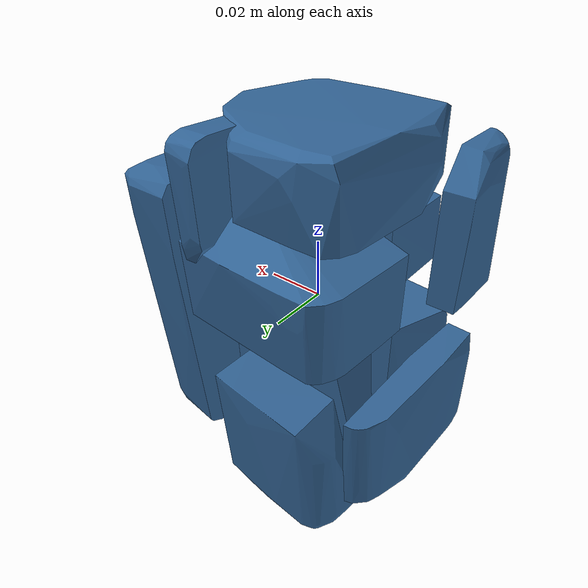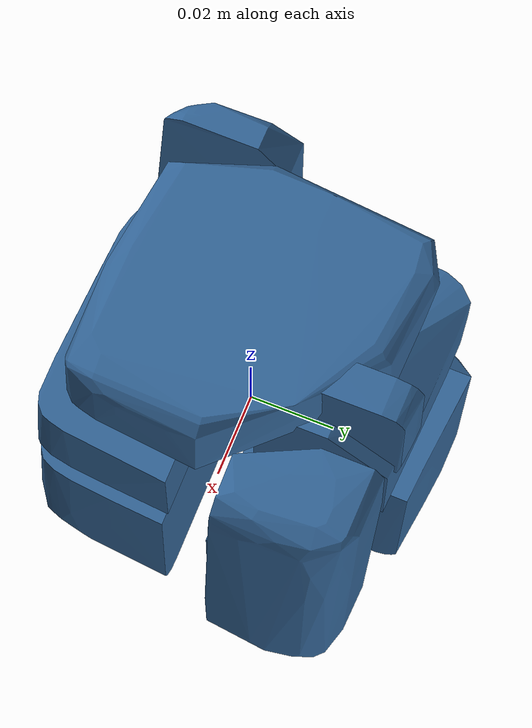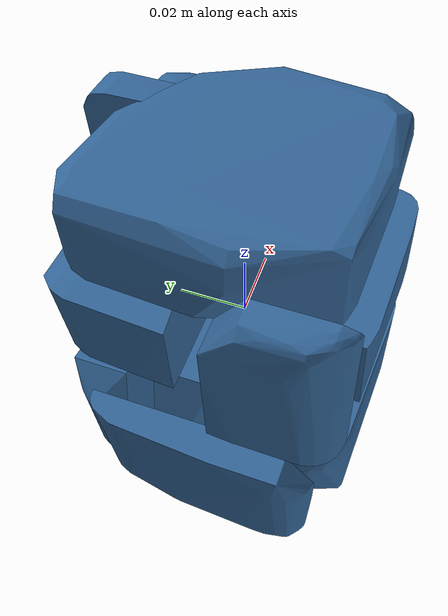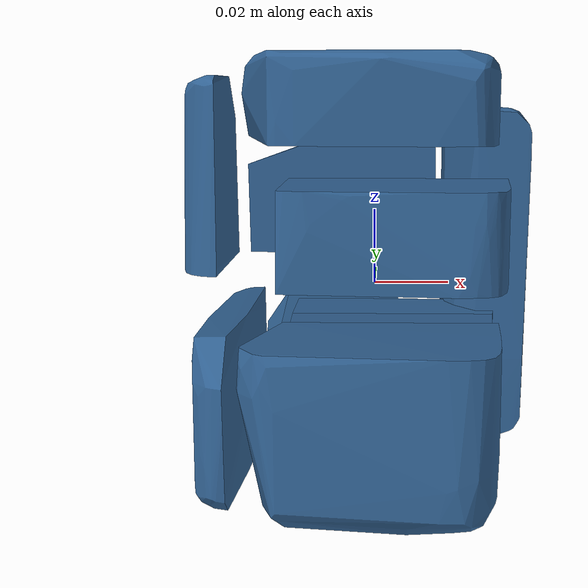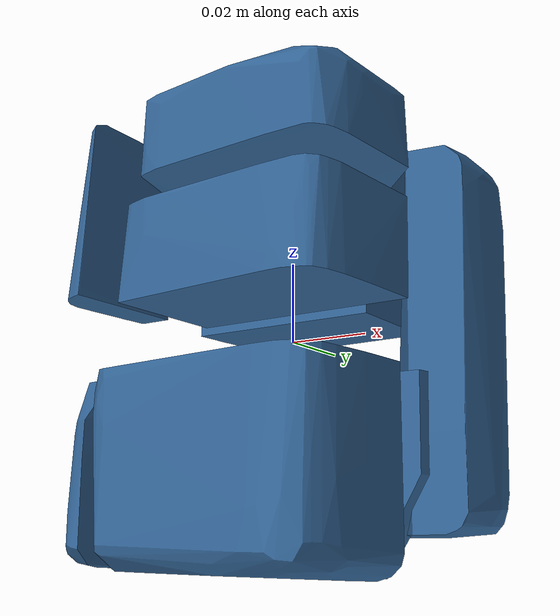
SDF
<?xml version='1.0' encoding='UTF-8'?>
<!-- This SDF was autogenerated by obj_to_drake_sdf.py -->
<sdf version="1.7">
  <model name="wood_block">
    <link name="wood_block">
      <inertial>
        <pose>0 0 0 0 0 0</pose>
        <mass>0.05</mass>
        <inertia>
          <ixx>0.0001060161</ixx>
          <iyy>0.00010595129</iyy>
          <izz>6.9829961e-05</izz>
          <ixy>2.4311986e-07</ixy>
          <ixz>-6.3630306e-07</ixz>
          <iyz>-2.7427532e-06</iyz>
        </inertia>
      </inertial>
      <visual name="convex_0">
        <pose>0 0 0 0 0 0</pose>
        <geometry>
          <mesh>
            <uri>wood_block_convex_0.obj</uri>
          </mesh>
        </geometry>
        <material>
          <diffuse>0.19607843137254902 0.39215686274509803 0.5882352941176471 1</diffuse>
        </material>
      </visual>
      <collision name="convex_0_volume">
        <pose>0 0 0 0 0 0</pose>
        <geometry>
          <mesh>
            <uri>wood_block_convex_0.obj</uri>
          </mesh>
        </geometry>
        <drake:proximity_properties xmlns:drake="uri:drake">
          <drake:compliant_hydroelastic/>
          <drake:hydroelastic_modulus> 3.0e7 </drake:hydroelastic_modulus>
          <drake:mesh_resolution_hint> 0.02 </drake:mesh_resolution_hint>
          <drake:hunt_crossley_dissipation>10</drake:hunt_crossley_dissipation>
          <drake:mu_dynamic>0.3</drake:mu_dynamic>
        </drake:proximity_properties>
      </collision>
      <visual name="convex_1">
        <pose>0 0 0 0 0 0</pose>
        <geometry>
          <mesh>
            <uri>wood_block_convex_1.obj</uri>
          </mesh>
        </geometry>
        <material>
          <diffuse>0.19607843137254902 0.39215686274509803 0.5882352941176471 1</diffuse>
        </material>
      </visual>
      <collision name="convex_1_volume">
        <pose>0 0 0 0 0 0</pose>
        <geometry>
          <mesh>
            <uri>wood_block_convex_1.obj</uri>
          </mesh>
        </geometry>
        <drake:proximity_properties xmlns:drake="uri:drake">
          <drake:compliant_hydroelastic/>
          <drake:hydroelastic_modulus> 3.0e7 </drake:hydroelastic_modulus>
          <drake:mesh_resolution_hint> 0.02 </drake:mesh_resolution_hint>
          <drake:hunt_crossley_dissipation>10</drake:hunt_crossley_dissipation>
          <drake:mu_dynamic>0.3</drake:mu_dynamic>
        </drake:proximity_properties>
      </collision>
      <visual name="convex_2">
        <pose>0 0 0 0 0 0</pose>
        <geometry>
          <mesh>
            <uri>wood_block_convex_2.obj</uri>
          </mesh>
        </geometry>
        <material>
          <diffuse>0.19607843137254902 0.39215686274509803 0.5882352941176471 1</diffuse>
        </material>
      </visual>
      <collision name="convex_2_volume">
        <pose>0 0 0 0 0 0</pose>
        <geometry>
          <mesh>
            <uri>wood_block_convex_2.obj</uri>
          </mesh>
        </geometry>
        <drake:proximity_properties xmlns:drake="uri:drake">
          <drake:compliant_hydroelastic/>
          <drake:hydroelastic_modulus> 3.0e7 </drake:hydroelastic_modulus>
          <drake:mesh_resolution_hint> 0.02 </drake:mesh_resolution_hint>
          <drake:hunt_crossley_dissipation>10</drake:hunt_crossley_dissipation>
          <drake:mu_dynamic>0.3</drake:mu_dynamic>
        </drake:proximity_properties>
      </collision>
      <visual name="convex_3">
        <pose>0 0 0 0 0 0</pose>
        <geometry>
          <mesh>
            <uri>wood_block_convex_3.obj</uri>
          </mesh>
        </geometry>
        <material>
          <diffuse>0.19607843137254902 0.39215686274509803 0.5882352941176471 1</diffuse>
        </material>
      </visual>
      <collision name="convex_3_volume">
        <pose>0 0 0 0 0 0</pose>
        <geometry>
          <mesh>
            <uri>wood_block_convex_3.obj</uri>
          </mesh>
        </geometry>
        <drake:proximity_properties xmlns:drake="uri:drake">
          <drake:compliant_hydroelastic/>
          <drake:hydroelastic_modulus> 3.0e7 </drake:hydroelastic_modulus>
          <drake:mesh_resolution_hint> 0.02 </drake:mesh_resolution_hint>
          <drake:hunt_crossley_dissipation>10</drake:hunt_crossley_dissipation>
          <drake:mu_dynamic>0.3</drake:mu_dynamic>
        </drake:proximity_properties>
      </collision>
      <visual name="convex_4">
        <pose>0 0 0 0 0 0</pose>
        <geometry>
          <mesh>
            <uri>wood_block_convex_4.obj</uri>
          </mesh>
        </geometry>
        <material>
          <diffuse>0.19607843137254902 0.39215686274509803 0.5882352941176471 1</diffuse>
        </material>
      </visual>
      <collision name="convex_4_volume">
        <pose>0 0 0 0 0 0</pose>
        <geometry>
          <mesh>
            <uri>wood_block_convex_4.obj</uri>
          </mesh>
        </geometry>
        <drake:proximity_properties xmlns:drake="uri:drake">
          <drake:compliant_hydroelastic/>
          <drake:hydroelastic_modulus> 3.0e7 </drake:hydroelastic_modulus>
          <drake:mesh_resolution_hint> 0.02 </drake:mesh_resolution_hint>
          <drake:hunt_crossley_dissipation>10</drake:hunt_crossley_dissipation>
          <drake:mu_dynamic>0.3</drake:mu_dynamic>
        </drake:proximity_properties>
      </collision>
      <visual name="convex_5">
        <pose>0 0 0 0 0 0</pose>
        <geometry>
          <mesh>
            <uri>wood_block_convex_5.obj</uri>
          </mesh>
        </geometry>
        <material>
          <diffuse>0.19607843137254902 0.39215686274509803 0.5882352941176471 1</diffuse>
        </material>
      </visual>
      <collision name="convex_5_volume">
        <pose>0 0 0 0 0 0</pose>
        <geometry>
          <mesh>
            <uri>wood_block_convex_5.obj</uri>
          </mesh>
        </geometry>
        <drake:proximity_properties xmlns:drake="uri:drake">
          <drake:compliant_hydroelastic/>
          <drake:hydroelastic_modulus> 3.0e7 </drake:hydroelastic_modulus>
          <drake:mesh_resolution_hint> 0.02 </drake:mesh_resolution_hint>
          <drake:hunt_crossley_dissipation>10</drake:hunt_crossley_dissipation>
          <drake:mu_dynamic>0.3</drake:mu_dynamic>
        </drake:proximity_properties>
      </collision>
      <visual name="convex_6">
        <pose>0 0 0 0 0 0</pose>
        <geometry>
          <mesh>
            <uri>wood_block_convex_6.obj</uri>
          </mesh>
        </geometry>
        <material>
          <diffuse>0.19607843137254902 0.39215686274509803 0.5882352941176471 1</diffuse>
        </material>
      </visual>
      <collision name="convex_6_volume">
        <pose>0 0 0 0 0 0</pose>
        <geometry>
          <mesh>
            <uri>wood_block_convex_6.obj</uri>
          </mesh>
        </geometry>
        <drake:proximity_properties xmlns:drake="uri:drake">
          <drake:compliant_hydroelastic/>
          <drake:hydroelastic_modulus> 3.0e7 </drake:hydroelastic_modulus>
          <drake:mesh_resolution_hint> 0.02 </drake:mesh_resolution_hint>
          <drake:hunt_crossley_dissipation>10</drake:hunt_crossley_dissipation>
          <drake:mu_dynamic>0.3</drake:mu_dynamic>
        </drake:proximity_properties>
      </collision>
      <visual name="convex_7">
        <pose>0 0 0 0 0 0</pose>
        <geometry>
          <mesh>
            <uri>wood_block_convex_7.obj</uri>
          </mesh>
        </geometry>
        <material>
          <diffuse>0.19607843137254902 0.39215686274509803 0.5882352941176471 1</diffuse>
        </material>
      </visual>
      <collision name="convex_7_volume">
        <pose>0 0 0 0 0 0</pose>
        <geometry>
          <mesh>
            <uri>wood_block_convex_7.obj</uri>
          </mesh>
        </geometry>
        <drake:proximity_properties xmlns:drake="uri:drake">
          <drake:compliant_hydroelastic/>
          <drake:hydroelastic_modulus> 3.0e7 </drake:hydroelastic_modulus>
          <drake:mesh_resolution_hint> 0.02 </drake:mesh_resolution_hint>
          <drake:hunt_crossley_dissipation>10</drake:hunt_crossley_dissipation>
          <drake:mu_dynamic>0.3</drake:mu_dynamic>
        </drake:proximity_properties>
      </collision>
      <visual name="convex_8">
        <pose>0 0 0 0 0 0</pose>
        <geometry>
          <mesh>
            <uri>wood_block_convex_8.obj</uri>
          </mesh>
        </geometry>
        <material>
          <diffuse>0.19607843137254902 0.39215686274509803 0.5882352941176471 1</diffuse>
        </material>
      </visual>
      <collision name="convex_8_volume">
        <pose>0 0 0 0 0 0</pose>
        <geometry>
          <mesh>
            <uri>wood_block_convex_8.obj</uri>
          </mesh>
        </geometry>
        <drake:proximity_properties xmlns:drake="uri:drake">
          <drake:compliant_hydroelastic/>
          <drake:hydroelastic_modulus> 3.0e7 </drake:hydroelastic_modulus>
          <drake:mesh_resolution_hint> 0.02 </drake:mesh_resolution_hint>
          <drake:hunt_crossley_dissipation>10</drake:hunt_crossley_dissipation>
          <drake:mu_dynamic>0.3</drake:mu_dynamic>
        </drake:proximity_properties>
      </collision>
      <visual name="convex_9">
        <pose>0 0 0 0 0 0</pose>
        <geometry>
          <mesh>
            <uri>wood_block_convex_9.obj</uri>
          </mesh>
        </geometry>
        <material>
          <diffuse>0.19607843137254902 0.39215686274509803 0.5882352941176471 1</diffuse>
        </material>
      </visual>
      <collision name="convex_9_volume">
        <pose>0 0 0 0 0 0</pose>
        <geometry>
          <mesh>
            <uri>wood_block_convex_9.obj</uri>
          </mesh>
        </geometry>
        <drake:proximity_properties xmlns:drake="uri:drake">
          <drake:compliant_hydroelastic/>
          <drake:hydroelastic_modulus> 3.0e7 </drake:hydroelastic_modulus>
          <drake:mesh_resolution_hint> 0.02 </drake:mesh_resolution_hint>
          <drake:hunt_crossley_dissipation>10</drake:hunt_crossley_dissipation>
          <drake:mu_dynamic>0.3</drake:mu_dynamic>
        </drake:proximity_properties>
      </collision>
    </link>
  </model>
</sdf>
